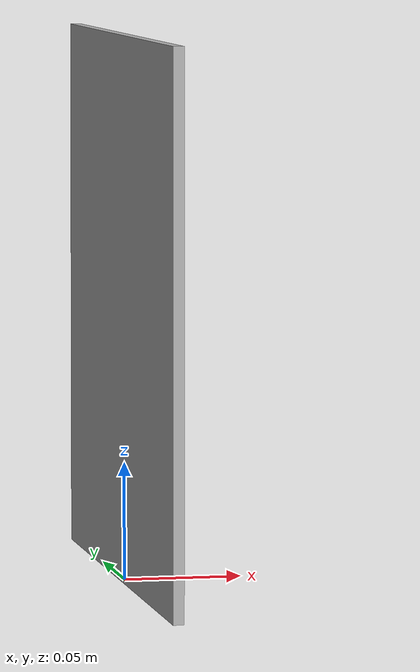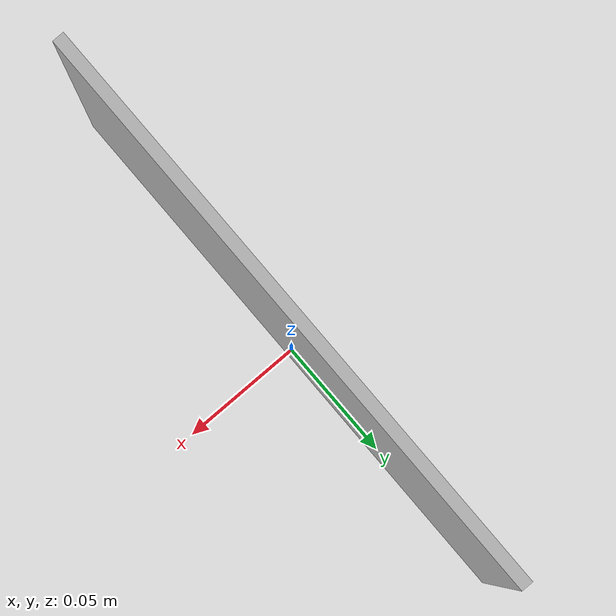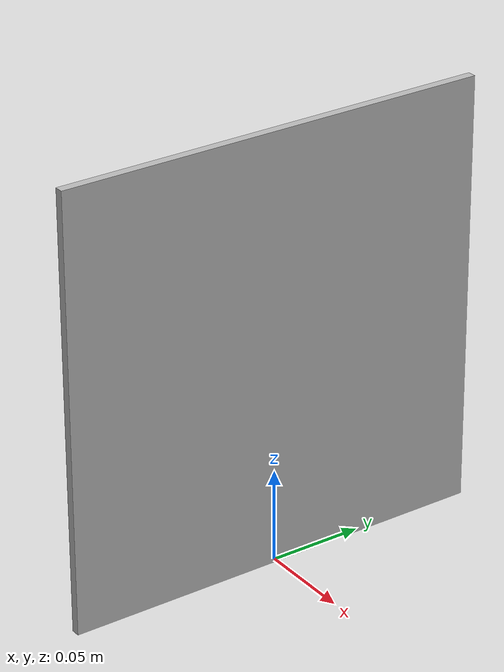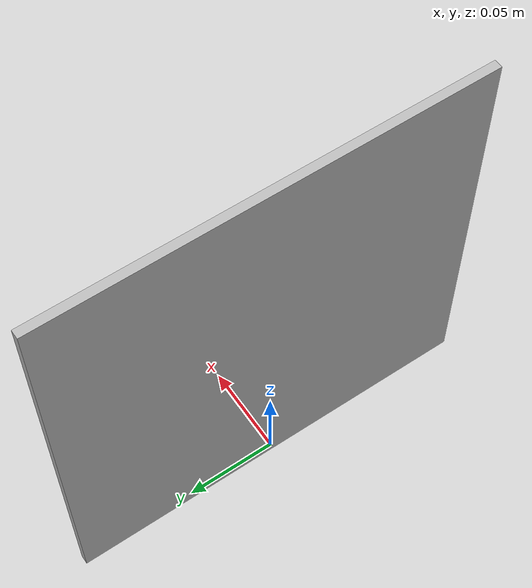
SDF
<?xml version="1.0" ?><sdf version="1.5">
  <model name="ar_marker_0_1_2_3_460">
    <static>true</static>
    <link name="link">
      <visual name="visual">
        <geometry>
          <mesh>
            <uri>model://ar_marker_0_1_2_3_460/meshes/ar_marker_0_1_2_3_460.dae</uri>
          <scale>0.46 0.46 0.46</scale></mesh>
        </geometry>
      </visual>
    </link>
  </model>
</sdf>
